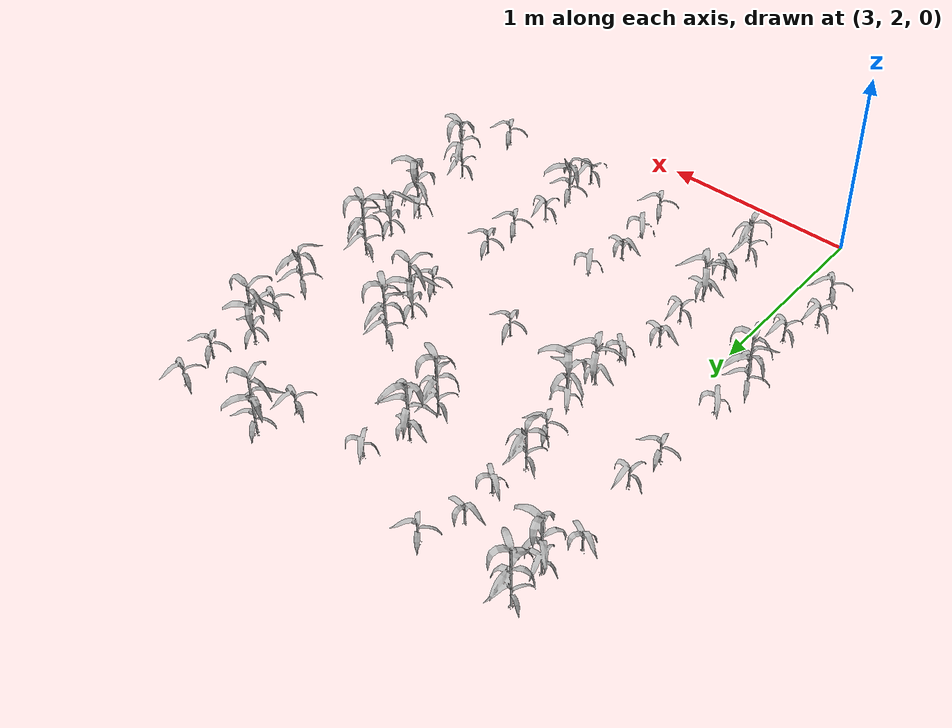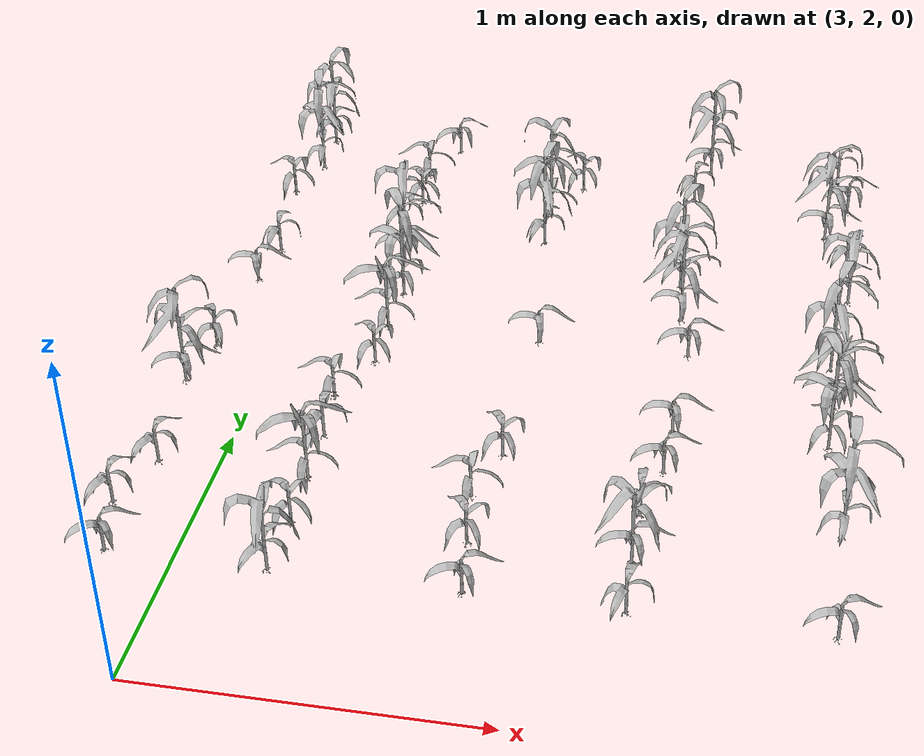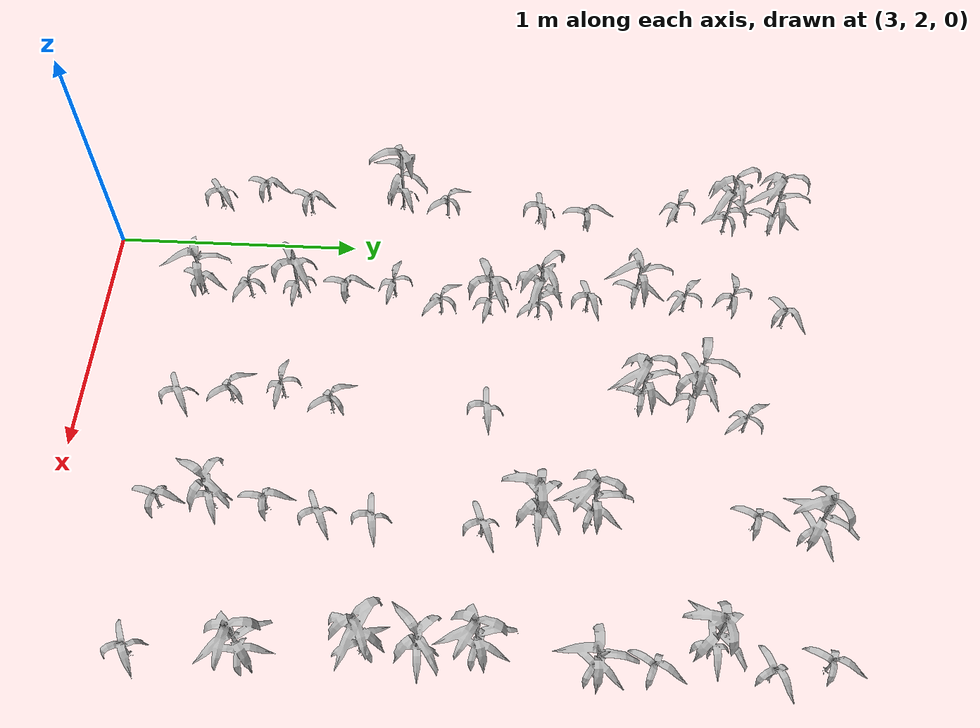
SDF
<sdf version="1.7">
 <world name="default">
  <model name="maize_2.8244248207793765_2.415">
   <static>1</static>
   <link name="link">
    <inertial>
     <mass>0.2</mass>
     <inertia>
      <ixx>0.166667</ixx>
      <ixy>0</ixy>
      <ixz>0</ixz>
      <iyy>0.166667</iyy>
      <iyz>0</iyz>
      <izz>0.166667</izz>
     </inertia>
    </inertial>
    <collision name="collision">
     <geometry><mesh><uri>model://corn_3/meshes/corn.dae</uri><scale>0.25 0.25 0.25</scale></mesh></geometry>
     <surface>
      <friction><ode><mu>0</mu><mu2>0</mu2></ode></friction>
      <contact><ode><kp>0</kp><kd>0</kd><max_vel>0</max_vel><min_depth>0.002</min_depth></ode></contact>
     </surface>
    </collision>
    <visual name="visual">
     <geometry><mesh><uri>model://corn_3/meshes/corn.dae</uri><scale>0.25 0.25 0.25</scale></mesh></geometry>
    </visual>
    <velocity_decay><linear>0</linear><angular>0</angular></velocity_decay>
   </link>
   <pose>2.82443 2.415 0.05 0 -0 0.677731</pose>
  </model>
  <model name="maize_2.774792496916839_2.6100000000000003">
   <static>1</static>
   <link name="link">
    <inertial>
     <mass>0.2</mass>
     <inertia>
      <ixx>0.166667</ixx>
      <ixy>0</ixy>
      <ixz>0</ixz>
      <iyy>0.166667</iyy>
      <iyz>0</iyz>
      <izz>0.166667</izz>
     </inertia>
    </inertial>
    <collision name="collision">
     <geometry><mesh><uri>model://corn_3/meshes/corn.dae</uri><scale>0.25 0.25 0.25</scale></mesh></geometry>
     <surface>
      <friction><ode><mu>0</mu><mu2>0</mu2></ode></friction>
      <contact><ode><kp>0</kp><kd>0</kd><max_vel>0</max_vel><min_depth>0.002</min_depth></ode></contact>
     </surface>
    </collision>
    <visual name="visual">
     <geometry><mesh><uri>model://corn_3/meshes/corn.dae</uri><scale>0.25 0.25 0.25</scale></mesh></geometry>
    </visual>
    <velocity_decay><linear>0</linear><angular>0</angular></velocity_decay>
   </link>
   <pose>2.77479 2.61 0.05 0 -0 1.27128</pose>
  </model>
  <model name="maize_2.8406246584385504_2.8050000000000006">
   <static>1</static>
   <link name="link">
    <inertial>
     <mass>0.2</mass>
     <inertia>
      <ixx>0.166667</ixx>
      <ixy>0</ixy>
      <ixz>0</ixz>
      <iyy>0.166667</iyy>
      <iyz>0</iyz>
      <izz>0.166667</izz>
     </inertia>
    </inertial>
    <collision name="collision">
     <geometry><mesh><uri>model://corn_3/meshes/corn.dae</uri><scale>0.25 0.25 0.25</scale></mesh></geometry>
     <surface>
      <friction><ode><mu>0</mu><mu2>0</mu2></ode></friction>
      <contact><ode><kp>0</kp><kd>0</kd><max_vel>0</max_vel><min_depth>0.002</min_depth></ode></contact>
     </surface>
    </collision>
    <visual name="visual">
     <geometry><mesh><uri>model://corn_3/meshes/corn.dae</uri><scale>0.25 0.25 0.25</scale></mesh></geometry>
    </visual>
    <velocity_decay><linear>0</linear><angular>0</angular></velocity_decay>
   </link>
   <pose>2.84063 2.805 0.05 0 -0 1.23743</pose>
  </model>
  <model name="maize_2.7902165927224867_3.1950000000000003">
   <static>1</static>
   <link name="link">
    <inertial>
     <mass>0.2</mass>
     <inertia>
      <ixx>0.166667</ixx>
      <ixy>0</ixy>
      <ixz>0</ixz>
      <iyy>0.166667</iyy>
      <iyz>0</iyz>
      <izz>0.166667</izz>
     </inertia>
    </inertial>
    <collision name="collision">
     <geometry><mesh><uri>model://corn_5/meshes/corn.dae</uri><scale>0.25 0.25 0.25</scale></mesh></geometry>
     <surface>
      <friction><ode><mu>0</mu><mu2>0</mu2></ode></friction>
      <contact><ode><kp>0</kp><kd>0</kd><max_vel>0</max_vel><min_depth>0.002</min_depth></ode></contact>
     </surface>
    </collision>
    <visual name="visual">
     <geometry><mesh><uri>model://corn_5/meshes/corn.dae</uri><scale>0.25 0.25 0.25</scale></mesh></geometry>
    </visual>
    <velocity_decay><linear>0</linear><angular>0</angular></velocity_decay>
   </link>
   <pose>2.79022 3.195 0.05 0 -0 0.473636</pose>
  </model>
  <model name="maize_2.8267955097829036_3.3899999999999997">
   <static>1</static>
   <link name="link">
    <inertial>
     <mass>0.2</mass>
     <inertia>
      <ixx>0.166667</ixx>
      <ixy>0</ixy>
      <ixz>0</ixz>
      <iyy>0.166667</iyy>
      <iyz>0</iyz>
      <izz>0.166667</izz>
     </inertia>
    </inertial>
    <collision name="collision">
     <geometry><mesh><uri>model://corn_3/meshes/corn.dae</uri><scale>0.25 0.25 0.25</scale></mesh></geometry>
     <surface>
      <friction><ode><mu>0</mu><mu2>0</mu2></ode></friction>
      <contact><ode><kp>0</kp><kd>0</kd><max_vel>0</max_vel><min_depth>0.002</min_depth></ode></contact>
     </surface>
    </collision>
    <visual name="visual">
     <geometry><mesh><uri>model://corn_3/meshes/corn.dae</uri><scale>0.25 0.25 0.25</scale></mesh></geometry>
    </visual>
    <velocity_decay><linear>0</linear><angular>0</angular></velocity_decay>
   </link>
   <pose>2.8268 3.39 0.05 0 -0 2.19696</pose>
  </model>
  <model name="maize_2.844087900887767_3.7800000000000002">
   <static>1</static>
   <link name="link">
    <inertial>
     <mass>0.2</mass>
     <inertia>
      <ixx>0.166667</ixx>
      <ixy>0</ixy>
      <ixz>0</ixz>
      <iyy>0.166667</iyy>
      <iyz>0</iyz>
      <izz>0.166667</izz>
     </inertia>
    </inertial>
    <collision name="collision">
     <geometry><mesh><uri>model://corn_3/meshes/corn.dae</uri><scale>0.25 0.25 0.25</scale></mesh></geometry>
     <surface>
      <friction><ode><mu>0</mu><mu2>0</mu2></ode></friction>
      <contact><ode><kp>0</kp><kd>0</kd><max_vel>0</max_vel><min_depth>0.002</min_depth></ode></contact>
     </surface>
    </collision>
    <visual name="visual">
     <geometry><mesh><uri>model://corn_3/meshes/corn.dae</uri><scale>0.25 0.25 0.25</scale></mesh></geometry>
    </visual>
    <velocity_decay><linear>0</linear><angular>0</angular></velocity_decay>
   </link>
   <pose>2.84409 3.78 0.05 0 -0 0.218754</pose>
  </model>
  <model name="maize_2.865433956093503_3.9750000000000005">
   <static>1</static>
   <link name="link">
    <inertial>
     <mass>0.2</mass>
     <inertia>
      <ixx>0.166667</ixx>
      <ixy>0</ixy>
      <ixz>0</ixz>
      <iyy>0.166667</iyy>
      <iyz>0</iyz>
      <izz>0.166667</izz>
     </inertia>
    </inertial>
    <collision name="collision">
     <geometry><mesh><uri>model://corn_3/meshes/corn.dae</uri><scale>0.25 0.25 0.25</scale></mesh></geometry>
     <surface>
      <friction><ode><mu>0</mu><mu2>0</mu2></ode></friction>
      <contact><ode><kp>0</kp><kd>0</kd><max_vel>0</max_vel><min_depth>0.002</min_depth></ode></contact>
     </surface>
    </collision>
    <visual name="visual">
     <geometry><mesh><uri>model://corn_3/meshes/corn.dae</uri><scale>0.25 0.25 0.25</scale></mesh></geometry>
    </visual>
    <velocity_decay><linear>0</linear><angular>0</angular></velocity_decay>
   </link>
   <pose>2.86543 3.975 0.05 0 -0 1.53986</pose>
  </model>
  <model name="maize_2.8072586818521645_4.365000000000001">
   <static>1</static>
   <link name="link">
    <inertial>
     <mass>0.2</mass>
     <inertia>
      <ixx>0.166667</ixx>
      <ixy>0</ixy>
      <ixz>0</ixz>
      <iyy>0.166667</iyy>
      <iyz>0</iyz>
      <izz>0.166667</izz>
     </inertia>
    </inertial>
    <collision name="collision">
     <geometry><mesh><uri>model://corn_3/meshes/corn.dae</uri><scale>0.25 0.25 0.25</scale></mesh></geometry>
     <surface>
      <friction><ode><mu>0</mu><mu2>0</mu2></ode></friction>
      <contact><ode><kp>0</kp><kd>0</kd><max_vel>0</max_vel><min_depth>0.002</min_depth></ode></contact>
     </surface>
    </collision>
    <visual name="visual">
     <geometry><mesh><uri>model://corn_3/meshes/corn.dae</uri><scale>0.25 0.25 0.25</scale></mesh></geometry>
    </visual>
    <velocity_decay><linear>0</linear><angular>0</angular></velocity_decay>
   </link>
   <pose>2.80726 4.365 0.05 0 -0 2.74895</pose>
  </model>
  <model name="maize_2.8615636835686873_4.56">
   <static>1</static>
   <link name="link">
    <inertial>
     <mass>0.2</mass>
     <inertia>
      <ixx>0.166667</ixx>
      <ixy>0</ixy>
      <ixz>0</ixz>
      <iyy>0.166667</iyy>
      <iyz>0</iyz>
      <izz>0.166667</izz>
     </inertia>
    </inertial>
    <collision name="collision">
     <geometry><mesh><uri>model://corn_5/meshes/corn.dae</uri><scale>0.25 0.25 0.25</scale></mesh></geometry>
     <surface>
      <friction><ode><mu>0</mu><mu2>0</mu2></ode></friction>
      <contact><ode><kp>0</kp><kd>0</kd><max_vel>0</max_vel><min_depth>0.002</min_depth></ode></contact>
     </surface>
    </collision>
    <visual name="visual">
     <geometry><mesh><uri>model://corn_5/meshes/corn.dae</uri><scale>0.25 0.25 0.25</scale></mesh></geometry>
    </visual>
    <velocity_decay><linear>0</linear><angular>0</angular></velocity_decay>
   </link>
   <pose>2.86156 4.56 0.05 0 -0 1.84243</pose>
  </model>
  <model name="maize_2.8543140193995895_4.755">
   <static>1</static>
   <link name="link">
    <inertial>
     <mass>0.2</mass>
     <inertia>
      <ixx>0.166667</ixx>
      <ixy>0</ixy>
      <ixz>0</ixz>
      <iyy>0.166667</iyy>
      <iyz>0</iyz>
      <izz>0.166667</izz>
     </inertia>
    </inertial>
    <collision name="collision">
     <geometry><mesh><uri>model://corn_5/meshes/corn.dae</uri><scale>0.25 0.25 0.25</scale></mesh></geometry>
     <surface>
      <friction><ode><mu>0</mu><mu2>0</mu2></ode></friction>
      <contact><ode><kp>0</kp><kd>0</kd><max_vel>0</max_vel><min_depth>0.002</min_depth></ode></contact>
     </surface>
    </collision>
    <visual name="visual">
     <geometry><mesh><uri>model://corn_5/meshes/corn.dae</uri><scale>0.25 0.25 0.25</scale></mesh></geometry>
    </visual>
    <velocity_decay><linear>0</linear><angular>0</angular></velocity_decay>
   </link>
   <pose>2.85431 4.755 0.05 0 -0 1.14133</pose>
  </model>
  <model name="maize_3.2862866395649486_2.415">
   <static>1</static>
   <link name="link">
    <inertial>
     <mass>0.2</mass>
     <inertia>
      <ixx>0.166667</ixx>
      <ixy>0</ixy>
      <ixz>0</ixz>
      <iyy>0.166667</iyy>
      <iyz>0</iyz>
      <izz>0.166667</izz>
     </inertia>
    </inertial>
    <collision name="collision">
     <geometry><mesh><uri>model://corn_4/meshes/corn.dae</uri><scale>0.25 0.25 0.25</scale></mesh></geometry>
     <surface>
      <friction><ode><mu>0</mu><mu2>0</mu2></ode></friction>
      <contact><ode><kp>0</kp><kd>0</kd><max_vel>0</max_vel><min_depth>0.002</min_depth></ode></contact>
     </surface>
    </collision>
    <visual name="visual">
     <geometry><mesh><uri>model://corn_4/meshes/corn.dae</uri><scale>0.25 0.25 0.25</scale></mesh></geometry>
    </visual>
    <velocity_decay><linear>0</linear><angular>0</angular></velocity_decay>
   </link>
   <pose>3.28629 2.415 0.05 0 -0 1.17777</pose>
  </model>
  <model name="maize_3.2971529848726315_2.6100000000000003">
   <static>1</static>
   <link name="link">
    <inertial>
     <mass>0.2</mass>
     <inertia>
      <ixx>0.166667</ixx>
      <ixy>0</ixy>
      <ixz>0</ixz>
      <iyy>0.166667</iyy>
      <iyz>0</iyz>
      <izz>0.166667</izz>
     </inertia>
    </inertial>
    <collision name="collision">
     <geometry><mesh><uri>model://corn_3/meshes/corn.dae</uri><scale>0.25 0.25 0.25</scale></mesh></geometry>
     <surface>
      <friction><ode><mu>0</mu><mu2>0</mu2></ode></friction>
      <contact><ode><kp>0</kp><kd>0</kd><max_vel>0</max_vel><min_depth>0.002</min_depth></ode></contact>
     </surface>
    </collision>
    <visual name="visual">
     <geometry><mesh><uri>model://corn_3/meshes/corn.dae</uri><scale>0.25 0.25 0.25</scale></mesh></geometry>
    </visual>
    <velocity_decay><linear>0</linear><angular>0</angular></velocity_decay>
   </link>
   <pose>3.29715 2.61 0.05 0 -0 2.62043</pose>
  </model>
  <model name="maize_3.2903254343312773_2.8050000000000006">
   <static>1</static>
   <link name="link">
    <inertial>
     <mass>0.2</mass>
     <inertia>
      <ixx>0.166667</ixx>
      <ixy>0</ixy>
      <ixz>0</ixz>
      <iyy>0.166667</iyy>
      <iyz>0</iyz>
      <izz>0.166667</izz>
     </inertia>
    </inertial>
    <collision name="collision">
     <geometry><mesh><uri>model://corn_4/meshes/corn.dae</uri><scale>0.25 0.25 0.25</scale></mesh></geometry>
     <surface>
      <friction><ode><mu>0</mu><mu2>0</mu2></ode></friction>
      <contact><ode><kp>0</kp><kd>0</kd><max_vel>0</max_vel><min_depth>0.002</min_depth></ode></contact>
     </surface>
    </collision>
    <visual name="visual">
     <geometry><mesh><uri>model://corn_4/meshes/corn.dae</uri><scale>0.25 0.25 0.25</scale></mesh></geometry>
    </visual>
    <velocity_decay><linear>0</linear><angular>0</angular></velocity_decay>
   </link>
   <pose>3.29033 2.805 0.05 0 -0 3.12015</pose>
  </model>
  <model name="maize_3.2853052241494503_3.000000000000001">
   <static>1</static>
   <link name="link">
    <inertial>
     <mass>0.2</mass>
     <inertia>
      <ixx>0.166667</ixx>
      <ixy>0</ixy>
      <ixz>0</ixz>
      <iyy>0.166667</iyy>
      <iyz>0</iyz>
      <izz>0.166667</izz>
     </inertia>
    </inertial>
    <collision name="collision">
     <geometry><mesh><uri>model://corn_3/meshes/corn.dae</uri><scale>0.25 0.25 0.25</scale></mesh></geometry>
     <surface>
      <friction><ode><mu>0</mu><mu2>0</mu2></ode></friction>
      <contact><ode><kp>0</kp><kd>0</kd><max_vel>0</max_vel><min_depth>0.002</min_depth></ode></contact>
     </surface>
    </collision>
    <visual name="visual">
     <geometry><mesh><uri>model://corn_3/meshes/corn.dae</uri><scale>0.25 0.25 0.25</scale></mesh></geometry>
    </visual>
    <velocity_decay><linear>0</linear><angular>0</angular></velocity_decay>
   </link>
   <pose>3.28531 3 0.05 0 -0 1.49109</pose>
  </model>
  <model name="maize_3.26472700474363_3.1950000000000003">
   <static>1</static>
   <link name="link">
    <inertial>
     <mass>0.2</mass>
     <inertia>
      <ixx>0.166667</ixx>
      <ixy>0</ixy>
      <ixz>0</ixz>
      <iyy>0.166667</iyy>
      <iyz>0</iyz>
      <izz>0.166667</izz>
     </inertia>
    </inertial>
    <collision name="collision">
     <geometry><mesh><uri>model://corn_3/meshes/corn.dae</uri><scale>0.25 0.25 0.25</scale></mesh></geometry>
     <surface>
      <friction><ode><mu>0</mu><mu2>0</mu2></ode></friction>
      <contact><ode><kp>0</kp><kd>0</kd><max_vel>0</max_vel><min_depth>0.002</min_depth></ode></contact>
     </surface>
    </collision>
    <visual name="visual">
     <geometry><mesh><uri>model://corn_3/meshes/corn.dae</uri><scale>0.25 0.25 0.25</scale></mesh></geometry>
    </visual>
    <velocity_decay><linear>0</linear><angular>0</angular></velocity_decay>
   </link>
   <pose>3.26473 3.195 0.05 0 -0 3.01105</pose>
  </model>
  <model name="maize_3.345355012522447_3.3899999999999997">
   <static>1</static>
   <link name="link">
    <inertial>
     <mass>0.2</mass>
     <inertia>
      <ixx>0.166667</ixx>
      <ixy>0</ixy>
      <ixz>0</ixz>
      <iyy>0.166667</iyy>
      <iyz>0</iyz>
      <izz>0.166667</izz>
     </inertia>
    </inertial>
    <collision name="collision">
     <geometry><mesh><uri>model://corn_3/meshes/corn.dae</uri><scale>0.25 0.25 0.25</scale></mesh></geometry>
     <surface>
      <friction><ode><mu>0</mu><mu2>0</mu2></ode></friction>
      <contact><ode><kp>0</kp><kd>0</kd><max_vel>0</max_vel><min_depth>0.002</min_depth></ode></contact>
     </surface>
    </collision>
    <visual name="visual">
     <geometry><mesh><uri>model://corn_3/meshes/corn.dae</uri><scale>0.25 0.25 0.25</scale></mesh></geometry>
    </visual>
    <velocity_decay><linear>0</linear><angular>0</angular></velocity_decay>
   </link>
   <pose>3.34536 3.39 0.05 0 -0 2.42483</pose>
  </model>
  <model name="maize_3.339645030773531_3.585">
   <static>1</static>
   <link name="link">
    <inertial>
     <mass>0.2</mass>
     <inertia>
      <ixx>0.166667</ixx>
      <ixy>0</ixy>
      <ixz>0</ixz>
      <iyy>0.166667</iyy>
      <iyz>0</iyz>
      <izz>0.166667</izz>
     </inertia>
    </inertial>
    <collision name="collision">
     <geometry><mesh><uri>model://corn_4/meshes/corn.dae</uri><scale>0.25 0.25 0.25</scale></mesh></geometry>
     <surface>
      <friction><ode><mu>0</mu><mu2>0</mu2></ode></friction>
      <contact><ode><kp>0</kp><kd>0</kd><max_vel>0</max_vel><min_depth>0.002</min_depth></ode></contact>
     </surface>
    </collision>
    <visual name="visual">
     <geometry><mesh><uri>model://corn_4/meshes/corn.dae</uri><scale>0.25 0.25 0.25</scale></mesh></geometry>
    </visual>
    <velocity_decay><linear>0</linear><angular>0</angular></velocity_decay>
   </link>
   <pose>3.33964 3.585 0.05 0 -0 2.98528</pose>
  </model>
  <model name="maize_3.346978174273397_3.7800000000000002">
   <static>1</static>
   <link name="link">
    <inertial>
     <mass>0.2</mass>
     <inertia>
      <ixx>0.166667</ixx>
      <ixy>0</ixy>
      <ixz>0</ixz>
      <iyy>0.166667</iyy>
      <iyz>0</iyz>
      <izz>0.166667</izz>
     </inertia>
    </inertial>
    <collision name="collision">
     <geometry><mesh><uri>model://corn_5/meshes/corn.dae</uri><scale>0.25 0.25 0.25</scale></mesh></geometry>
     <surface>
      <friction><ode><mu>0</mu><mu2>0</mu2></ode></friction>
      <contact><ode><kp>0</kp><kd>0</kd><max_vel>0</max_vel><min_depth>0.002</min_depth></ode></contact>
     </surface>
    </collision>
    <visual name="visual">
     <geometry><mesh><uri>model://corn_5/meshes/corn.dae</uri><scale>0.25 0.25 0.25</scale></mesh></geometry>
    </visual>
    <velocity_decay><linear>0</linear><angular>0</angular></velocity_decay>
   </link>
   <pose>3.34698 3.78 0.05 0 -0 2.22183</pose>
  </model>
  <model name="maize_3.304312208960409_3.9750000000000005">
   <static>1</static>
   <link name="link">
    <inertial>
     <mass>0.2</mass>
     <inertia>
      <ixx>0.166667</ixx>
      <ixy>0</ixy>
      <ixz>0</ixz>
      <iyy>0.166667</iyy>
      <iyz>0</iyz>
      <izz>0.166667</izz>
     </inertia>
    </inertial>
    <collision name="collision">
     <geometry><mesh><uri>model://corn_3/meshes/corn.dae</uri><scale>0.25 0.25 0.25</scale></mesh></geometry>
     <surface>
      <friction><ode><mu>0</mu><mu2>0</mu2></ode></friction>
      <contact><ode><kp>0</kp><kd>0</kd><max_vel>0</max_vel><min_depth>0.002</min_depth></ode></contact>
     </surface>
    </collision>
    <visual name="visual">
     <geometry><mesh><uri>model://corn_3/meshes/corn.dae</uri><scale>0.25 0.25 0.25</scale></mesh></geometry>
    </visual>
    <velocity_decay><linear>0</linear><angular>0</angular></velocity_decay>
   </link>
   <pose>3.30431 3.975 0.05 0 -0 0.385969</pose>
  </model>
  <model name="maize_3.2592470380215692_4.170000000000001">
   <static>1</static>
   <link name="link">
    <inertial>
     <mass>0.2</mass>
     <inertia>
      <ixx>0.166667</ixx>
      <ixy>0</ixy>
      <ixz>0</ixz>
      <iyy>0.166667</iyy>
      <iyz>0</iyz>
      <izz>0.166667</izz>
     </inertia>
    </inertial>
    <collision name="collision">
     <geometry><mesh><uri>model://corn_4/meshes/corn.dae</uri><scale>0.25 0.25 0.25</scale></mesh></geometry>
     <surface>
      <friction><ode><mu>0</mu><mu2>0</mu2></ode></friction>
      <contact><ode><kp>0</kp><kd>0</kd><max_vel>0</max_vel><min_depth>0.002</min_depth></ode></contact>
     </surface>
    </collision>
    <visual name="visual">
     <geometry><mesh><uri>model://corn_4/meshes/corn.dae</uri><scale>0.25 0.25 0.25</scale></mesh></geometry>
    </visual>
    <velocity_decay><linear>0</linear><angular>0</angular></velocity_decay>
   </link>
   <pose>3.25925 4.17 0.05 0 -0 1.2228</pose>
  </model>
  <model name="maize_3.2806938064286713_4.365000000000001">
   <static>1</static>
   <link name="link">
    <inertial>
     <mass>0.2</mass>
     <inertia>
      <ixx>0.166667</ixx>
      <ixy>0</ixy>
      <ixz>0</ixz>
      <iyy>0.166667</iyy>
      <iyz>0</iyz>
      <izz>0.166667</izz>
     </inertia>
    </inertial>
    <collision name="collision">
     <geometry><mesh><uri>model://corn_3/meshes/corn.dae</uri><scale>0.25 0.25 0.25</scale></mesh></geometry>
     <surface>
      <friction><ode><mu>0</mu><mu2>0</mu2></ode></friction>
      <contact><ode><kp>0</kp><kd>0</kd><max_vel>0</max_vel><min_depth>0.002</min_depth></ode></contact>
     </surface>
    </collision>
    <visual name="visual">
     <geometry><mesh><uri>model://corn_3/meshes/corn.dae</uri><scale>0.25 0.25 0.25</scale></mesh></geometry>
    </visual>
    <velocity_decay><linear>0</linear><angular>0</angular></velocity_decay>
   </link>
   <pose>3.28069 4.365 0.05 0 -0 2.55697</pose>
  </model>
  <model name="maize_3.263959321857466_4.56">
   <static>1</static>
   <link name="link">
    <inertial>
     <mass>0.2</mass>
     <inertia>
      <ixx>0.166667</ixx>
      <ixy>0</ixy>
      <ixz>0</ixz>
      <iyy>0.166667</iyy>
      <iyz>0</iyz>
      <izz>0.166667</izz>
     </inertia>
    </inertial>
    <collision name="collision">
     <geometry><mesh><uri>model://corn_3/meshes/corn.dae</uri><scale>0.25 0.25 0.25</scale></mesh></geometry>
     <surface>
      <friction><ode><mu>0</mu><mu2>0</mu2></ode></friction>
      <contact><ode><kp>0</kp><kd>0</kd><max_vel>0</max_vel><min_depth>0.002</min_depth></ode></contact>
     </surface>
    </collision>
    <visual name="visual">
     <geometry><mesh><uri>model://corn_3/meshes/corn.dae</uri><scale>0.25 0.25 0.25</scale></mesh></geometry>
    </visual>
    <velocity_decay><linear>0</linear><angular>0</angular></velocity_decay>
   </link>
   <pose>3.26396 4.56 0.05 0 -0 3.13289</pose>
  </model>
  <model name="maize_3.3411550386050015_4.755">
   <static>1</static>
   <link name="link">
    <inertial>
     <mass>0.2</mass>
     <inertia>
      <ixx>0.166667</ixx>
      <ixy>0</ixy>
      <ixz>0</ixz>
      <iyy>0.166667</iyy>
      <iyz>0</iyz>
      <izz>0.166667</izz>
     </inertia>
    </inertial>
    <collision name="collision">
     <geometry><mesh><uri>model://corn_3/meshes/corn.dae</uri><scale>0.25 0.25 0.25</scale></mesh></geometry>
     <surface>
      <friction><ode><mu>0</mu><mu2>0</mu2></ode></friction>
      <contact><ode><kp>0</kp><kd>0</kd><max_vel>0</max_vel><min_depth>0.002</min_depth></ode></contact>
     </surface>
    </collision>
    <visual name="visual">
     <geometry><mesh><uri>model://corn_3/meshes/corn.dae</uri><scale>0.25 0.25 0.25</scale></mesh></geometry>
    </visual>
    <velocity_decay><linear>0</linear><angular>0</angular></velocity_decay>
   </link>
   <pose>3.34116 4.755 0.05 0 -0 0.662899</pose>
  </model>
  <model name="maize_3.8223544037475885_2.415">
   <static>1</static>
   <link name="link">
    <inertial>
     <mass>0.2</mass>
     <inertia>
      <ixx>0.166667</ixx>
      <ixy>0</ixy>
      <ixz>0</ixz>
      <iyy>0.166667</iyy>
      <iyz>0</iyz>
      <izz>0.166667</izz>
     </inertia>
    </inertial>
    <collision name="collision">
     <geometry><mesh><uri>model://corn_3/meshes/corn.dae</uri><scale>0.25 0.25 0.25</scale></mesh></geometry>
     <surface>
      <friction><ode><mu>0</mu><mu2>0</mu2></ode></friction>
      <contact><ode><kp>0</kp><kd>0</kd><max_vel>0</max_vel><min_depth>0.002</min_depth></ode></contact>
     </surface>
    </collision>
    <visual name="visual">
     <geometry><mesh><uri>model://corn_3/meshes/corn.dae</uri><scale>0.25 0.25 0.25</scale></mesh></geometry>
    </visual>
    <velocity_decay><linear>0</linear><angular>0</angular></velocity_decay>
   </link>
   <pose>3.82235 2.415 0.05 0 -0 0.501719</pose>
  </model>
  <model name="maize_3.796549780503951_2.6100000000000003">
   <static>1</static>
   <link name="link">
    <inertial>
     <mass>0.2</mass>
     <inertia>
      <ixx>0.166667</ixx>
      <ixy>0</ixy>
      <ixz>0</ixz>
      <iyy>0.166667</iyy>
      <iyz>0</iyz>
      <izz>0.166667</izz>
     </inertia>
    </inertial>
    <collision name="collision">
     <geometry><mesh><uri>model://corn_3/meshes/corn.dae</uri><scale>0.25 0.25 0.25</scale></mesh></geometry>
     <surface>
      <friction><ode><mu>0</mu><mu2>0</mu2></ode></friction>
      <contact><ode><kp>0</kp><kd>0</kd><max_vel>0</max_vel><min_depth>0.002</min_depth></ode></contact>
     </surface>
    </collision>
    <visual name="visual">
     <geometry><mesh><uri>model://corn_3/meshes/corn.dae</uri><scale>0.25 0.25 0.25</scale></mesh></geometry>
    </visual>
    <velocity_decay><linear>0</linear><angular>0</angular></velocity_decay>
   </link>
   <pose>3.79655 2.61 0.05 0 -0 2.24491</pose>
  </model>
  <model name="maize_3.7691438764127647_2.8050000000000006">
   <static>1</static>
   <link name="link">
    <inertial>
     <mass>0.2</mass>
     <inertia>
      <ixx>0.166667</ixx>
      <ixy>0</ixy>
      <ixz>0</ixz>
      <iyy>0.166667</iyy>
      <iyz>0</iyz>
      <izz>0.166667</izz>
     </inertia>
    </inertial>
    <collision name="collision">
     <geometry><mesh><uri>model://corn_3/meshes/corn.dae</uri><scale>0.25 0.25 0.25</scale></mesh></geometry>
     <surface>
      <friction><ode><mu>0</mu><mu2>0</mu2></ode></friction>
      <contact><ode><kp>0</kp><kd>0</kd><max_vel>0</max_vel><min_depth>0.002</min_depth></ode></contact>
     </surface>
    </collision>
    <visual name="visual">
     <geometry><mesh><uri>model://corn_3/meshes/corn.dae</uri><scale>0.25 0.25 0.25</scale></mesh></geometry>
    </visual>
    <velocity_decay><linear>0</linear><angular>0</angular></velocity_decay>
   </link>
   <pose>3.76914 2.805 0.05 0 -0 3.07938</pose>
  </model>
  <model name="maize_3.8253490522609988_3.000000000000001">
   <static>1</static>
   <link name="link">
    <inertial>
     <mass>0.2</mass>
     <inertia>
      <ixx>0.166667</ixx>
      <ixy>0</ixy>
      <ixz>0</ixz>
      <iyy>0.166667</iyy>
      <iyz>0</iyz>
      <izz>0.166667</izz>
     </inertia>
    </inertial>
    <collision name="collision">
     <geometry><mesh><uri>model://corn_3/meshes/corn.dae</uri><scale>0.25 0.25 0.25</scale></mesh></geometry>
     <surface>
      <friction><ode><mu>0</mu><mu2>0</mu2></ode></friction>
      <contact><ode><kp>0</kp><kd>0</kd><max_vel>0</max_vel><min_depth>0.002</min_depth></ode></contact>
     </surface>
    </collision>
    <visual name="visual">
     <geometry><mesh><uri>model://corn_3/meshes/corn.dae</uri><scale>0.25 0.25 0.25</scale></mesh></geometry>
    </visual>
    <velocity_decay><linear>0</linear><angular>0</angular></velocity_decay>
   </link>
   <pose>3.82535 3 0.05 0 -0 2.20038</pose>
  </model>
  <model name="maize_3.8344046426446026_3.585">
   <static>1</static>
   <link name="link">
    <inertial>
     <mass>0.2</mass>
     <inertia>
      <ixx>0.166667</ixx>
      <ixy>0</ixy>
      <ixz>0</ixz>
      <iyy>0.166667</iyy>
      <iyz>0</iyz>
      <izz>0.166667</izz>
     </inertia>
    </inertial>
    <collision name="collision">
     <geometry><mesh><uri>model://corn_3/meshes/corn.dae</uri><scale>0.25 0.25 0.25</scale></mesh></geometry>
     <surface>
      <friction><ode><mu>0</mu><mu2>0</mu2></ode></friction>
      <contact><ode><kp>0</kp><kd>0</kd><max_vel>0</max_vel><min_depth>0.002</min_depth></ode></contact>
     </surface>
    </collision>
    <visual name="visual">
     <geometry><mesh><uri>model://corn_3/meshes/corn.dae</uri><scale>0.25 0.25 0.25</scale></mesh></geometry>
    </visual>
    <velocity_decay><linear>0</linear><angular>0</angular></velocity_decay>
   </link>
   <pose>3.8344 3.585 0.05 0 -0 0.140074</pose>
  </model>
  <model name="maize_3.7570927877433244_4.170000000000001">
   <static>1</static>
   <link name="link">
    <inertial>
     <mass>0.2</mass>
     <inertia>
      <ixx>0.166667</ixx>
      <ixy>0</ixy>
      <ixz>0</ixz>
      <iyy>0.166667</iyy>
      <iyz>0</iyz>
      <izz>0.166667</izz>
     </inertia>
    </inertial>
    <collision name="collision">
     <geometry><mesh><uri>model://corn_5/meshes/corn.dae</uri><scale>0.25 0.25 0.25</scale></mesh></geometry>
     <surface>
      <friction><ode><mu>0</mu><mu2>0</mu2></ode></friction>
      <contact><ode><kp>0</kp><kd>0</kd><max_vel>0</max_vel><min_depth>0.002</min_depth></ode></contact>
     </surface>
    </collision>
    <visual name="visual">
     <geometry><mesh><uri>model://corn_5/meshes/corn.dae</uri><scale>0.25 0.25 0.25</scale></mesh></geometry>
    </visual>
    <velocity_decay><linear>0</linear><angular>0</angular></velocity_decay>
   </link>
   <pose>3.75709 4.17 0.05 0 -0 1.30662</pose>
  </model>
  <model name="maize_3.749240129354522_4.365000000000001">
   <static>1</static>
   <link name="link">
    <inertial>
     <mass>0.2</mass>
     <inertia>
      <ixx>0.166667</ixx>
      <ixy>0</ixy>
      <ixz>0</ixz>
      <iyy>0.166667</iyy>
      <iyz>0</iyz>
      <izz>0.166667</izz>
     </inertia>
    </inertial>
    <collision name="collision">
     <geometry><mesh><uri>model://corn_5/meshes/corn.dae</uri><scale>0.25 0.25 0.25</scale></mesh></geometry>
     <surface>
      <friction><ode><mu>0</mu><mu2>0</mu2></ode></friction>
      <contact><ode><kp>0</kp><kd>0</kd><max_vel>0</max_vel><min_depth>0.002</min_depth></ode></contact>
     </surface>
    </collision>
    <visual name="visual">
     <geometry><mesh><uri>model://corn_5/meshes/corn.dae</uri><scale>0.25 0.25 0.25</scale></mesh></geometry>
    </visual>
    <velocity_decay><linear>0</linear><angular>0</angular></velocity_decay>
   </link>
   <pose>3.74924 4.365 0.05 0 -0 3.02705</pose>
  </model>
  <model name="maize_3.8382152239203906_4.56">
   <static>1</static>
   <link name="link">
    <inertial>
     <mass>0.2</mass>
     <inertia>
      <ixx>0.166667</ixx>
      <ixy>0</ixy>
      <ixz>0</ixz>
      <iyy>0.166667</iyy>
      <iyz>0</iyz>
      <izz>0.166667</izz>
     </inertia>
    </inertial>
    <collision name="collision">
     <geometry><mesh><uri>model://corn_3/meshes/corn.dae</uri><scale>0.25 0.25 0.25</scale></mesh></geometry>
     <surface>
      <friction><ode><mu>0</mu><mu2>0</mu2></ode></friction>
      <contact><ode><kp>0</kp><kd>0</kd><max_vel>0</max_vel><min_depth>0.002</min_depth></ode></contact>
     </surface>
    </collision>
    <visual name="visual">
     <geometry><mesh><uri>model://corn_3/meshes/corn.dae</uri><scale>0.25 0.25 0.25</scale></mesh></geometry>
    </visual>
    <velocity_decay><linear>0</linear><angular>0</angular></velocity_decay>
   </link>
   <pose>3.83821 4.56 0.05 0 -0 2.28396</pose>
  </model>
  <model name="maize_4.260883157664362_2.415">
   <static>1</static>
   <link name="link">
    <inertial>
     <mass>0.2</mass>
     <inertia>
      <ixx>0.166667</ixx>
      <ixy>0</ixy>
      <ixz>0</ixz>
      <iyy>0.166667</iyy>
      <iyz>0</iyz>
      <izz>0.166667</izz>
     </inertia>
    </inertial>
    <collision name="collision">
     <geometry><mesh><uri>model://corn_3/meshes/corn.dae</uri><scale>0.25 0.25 0.25</scale></mesh></geometry>
     <surface>
      <friction><ode><mu>0</mu><mu2>0</mu2></ode></friction>
      <contact><ode><kp>0</kp><kd>0</kd><max_vel>0</max_vel><min_depth>0.002</min_depth></ode></contact>
     </surface>
    </collision>
    <visual name="visual">
     <geometry><mesh><uri>model://corn_3/meshes/corn.dae</uri><scale>0.25 0.25 0.25</scale></mesh></geometry>
    </visual>
    <velocity_decay><linear>0</linear><angular>0</angular></velocity_decay>
   </link>
   <pose>4.26088 2.415 0.05 0 -0 1.38448</pose>
  </model>
  <model name="maize_4.251716179460272_2.6100000000000003">
   <static>1</static>
   <link name="link">
    <inertial>
     <mass>0.2</mass>
     <inertia>
      <ixx>0.166667</ixx>
      <ixy>0</ixy>
      <ixz>0</ixz>
      <iyy>0.166667</iyy>
      <iyz>0</iyz>
      <izz>0.166667</izz>
     </inertia>
    </inertial>
    <collision name="collision">
     <geometry><mesh><uri>model://corn_4/meshes/corn.dae</uri><scale>0.25 0.25 0.25</scale></mesh></geometry>
     <surface>
      <friction><ode><mu>0</mu><mu2>0</mu2></ode></friction>
      <contact><ode><kp>0</kp><kd>0</kd><max_vel>0</max_vel><min_depth>0.002</min_depth></ode></contact>
     </surface>
    </collision>
    <visual name="visual">
     <geometry><mesh><uri>model://corn_4/meshes/corn.dae</uri><scale>0.25 0.25 0.25</scale></mesh></geometry>
    </visual>
    <velocity_decay><linear>0</linear><angular>0</angular></velocity_decay>
   </link>
   <pose>4.25172 2.61 0.05 0 -0 0.347298</pose>
  </model>
  <model name="maize_4.25214057183028_2.8050000000000006">
   <static>1</static>
   <link name="link">
    <inertial>
     <mass>0.2</mass>
     <inertia>
      <ixx>0.166667</ixx>
      <ixy>0</ixy>
      <ixz>0</ixz>
      <iyy>0.166667</iyy>
      <iyz>0</iyz>
      <izz>0.166667</izz>
     </inertia>
    </inertial>
    <collision name="collision">
     <geometry><mesh><uri>model://corn_3/meshes/corn.dae</uri><scale>0.25 0.25 0.25</scale></mesh></geometry>
     <surface>
      <friction><ode><mu>0</mu><mu2>0</mu2></ode></friction>
      <contact><ode><kp>0</kp><kd>0</kd><max_vel>0</max_vel><min_depth>0.002</min_depth></ode></contact>
     </surface>
    </collision>
    <visual name="visual">
     <geometry><mesh><uri>model://corn_3/meshes/corn.dae</uri><scale>0.25 0.25 0.25</scale></mesh></geometry>
    </visual>
    <velocity_decay><linear>0</linear><angular>0</angular></velocity_decay>
   </link>
   <pose>4.25214 2.805 0.05 0 -0 1.59269</pose>
  </model>
  <model name="maize_4.295943101602375_3.000000000000001">
   <static>1</static>
   <link name="link">
    <inertial>
     <mass>0.2</mass>
     <inertia>
      <ixx>0.166667</ixx>
      <ixy>0</ixy>
      <ixz>0</ixz>
      <iyy>0.166667</iyy>
      <iyz>0</iyz>
      <izz>0.166667</izz>
     </inertia>
    </inertial>
    <collision name="collision">
     <geometry><mesh><uri>model://corn_3/meshes/corn.dae</uri><scale>0.25 0.25 0.25</scale></mesh></geometry>
     <surface>
      <friction><ode><mu>0</mu><mu2>0</mu2></ode></friction>
      <contact><ode><kp>0</kp><kd>0</kd><max_vel>0</max_vel><min_depth>0.002</min_depth></ode></contact>
     </surface>
    </collision>
    <visual name="visual">
     <geometry><mesh><uri>model://corn_3/meshes/corn.dae</uri><scale>0.25 0.25 0.25</scale></mesh></geometry>
    </visual>
    <velocity_decay><linear>0</linear><angular>0</angular></velocity_decay>
   </link>
   <pose>4.29594 3 0.05 0 -0 0.487002</pose>
  </model>
  <model name="maize_4.302658355236709_3.1950000000000003">
   <static>1</static>
   <link name="link">
    <inertial>
     <mass>0.2</mass>
     <inertia>
      <ixx>0.166667</ixx>
      <ixy>0</ixy>
      <ixz>0</ixz>
      <iyy>0.166667</iyy>
      <iyz>0</iyz>
      <izz>0.166667</izz>
     </inertia>
    </inertial>
    <collision name="collision">
     <geometry><mesh><uri>model://corn_3/meshes/corn.dae</uri><scale>0.25 0.25 0.25</scale></mesh></geometry>
     <surface>
      <friction><ode><mu>0</mu><mu2>0</mu2></ode></friction>
      <contact><ode><kp>0</kp><kd>0</kd><max_vel>0</max_vel><min_depth>0.002</min_depth></ode></contact>
     </surface>
    </collision>
    <visual name="visual">
     <geometry><mesh><uri>model://corn_3/meshes/corn.dae</uri><scale>0.25 0.25 0.25</scale></mesh></geometry>
    </visual>
    <velocity_decay><linear>0</linear><angular>0</angular></velocity_decay>
   </link>
   <pose>4.30266 3.195 0.05 0 -0 0.191741</pose>
  </model>
  <model name="maize_4.311566994378026_3.585">
   <static>1</static>
   <link name="link">
    <inertial>
     <mass>0.2</mass>
     <inertia>
      <ixx>0.166667</ixx>
      <ixy>0</ixy>
      <ixz>0</ixz>
      <iyy>0.166667</iyy>
      <iyz>0</iyz>
      <izz>0.166667</izz>
     </inertia>
    </inertial>
    <collision name="collision">
     <geometry><mesh><uri>model://corn_3/meshes/corn.dae</uri><scale>0.25 0.25 0.25</scale></mesh></geometry>
     <surface>
      <friction><ode><mu>0</mu><mu2>0</mu2></ode></friction>
      <contact><ode><kp>0</kp><kd>0</kd><max_vel>0</max_vel><min_depth>0.002</min_depth></ode></contact>
     </surface>
    </collision>
    <visual name="visual">
     <geometry><mesh><uri>model://corn_3/meshes/corn.dae</uri><scale>0.25 0.25 0.25</scale></mesh></geometry>
    </visual>
    <velocity_decay><linear>0</linear><angular>0</angular></velocity_decay>
   </link>
   <pose>4.31157 3.585 0.05 0 -0 0.432077</pose>
  </model>
  <model name="maize_4.269274838598503_3.7800000000000002">
   <static>1</static>
   <link name="link">
    <inertial>
     <mass>0.2</mass>
     <inertia>
      <ixx>0.166667</ixx>
      <ixy>0</ixy>
      <ixz>0</ixz>
      <iyy>0.166667</iyy>
      <iyz>0</iyz>
      <izz>0.166667</izz>
     </inertia>
    </inertial>
    <collision name="collision">
     <geometry><mesh><uri>model://corn_5/meshes/corn.dae</uri><scale>0.25 0.25 0.25</scale></mesh></geometry>
     <surface>
      <friction><ode><mu>0</mu><mu2>0</mu2></ode></friction>
      <contact><ode><kp>0</kp><kd>0</kd><max_vel>0</max_vel><min_depth>0.002</min_depth></ode></contact>
     </surface>
    </collision>
    <visual name="visual">
     <geometry><mesh><uri>model://corn_5/meshes/corn.dae</uri><scale>0.25 0.25 0.25</scale></mesh></geometry>
    </visual>
    <velocity_decay><linear>0</linear><angular>0</angular></velocity_decay>
   </link>
   <pose>4.26928 3.78 0.05 0 -0 0.060317</pose>
  </model>
  <model name="maize_4.249162274015621_3.9750000000000005">
   <static>1</static>
   <link name="link">
    <inertial>
     <mass>0.2</mass>
     <inertia>
      <ixx>0.166667</ixx>
      <ixy>0</ixy>
      <ixz>0</ixz>
      <iyy>0.166667</iyy>
      <iyz>0</iyz>
      <izz>0.166667</izz>
     </inertia>
    </inertial>
    <collision name="collision">
     <geometry><mesh><uri>model://corn_5/meshes/corn.dae</uri><scale>0.25 0.25 0.25</scale></mesh></geometry>
     <surface>
      <friction><ode><mu>0</mu><mu2>0</mu2></ode></friction>
      <contact><ode><kp>0</kp><kd>0</kd><max_vel>0</max_vel><min_depth>0.002</min_depth></ode></contact>
     </surface>
    </collision>
    <visual name="visual">
     <geometry><mesh><uri>model://corn_5/meshes/corn.dae</uri><scale>0.25 0.25 0.25</scale></mesh></geometry>
    </visual>
    <velocity_decay><linear>0</linear><angular>0</angular></velocity_decay>
   </link>
   <pose>4.24916 3.975 0.05 0 -0 1.09233</pose>
  </model>
  <model name="maize_4.2430925967852495_4.56">
   <static>1</static>
   <link name="link">
    <inertial>
     <mass>0.2</mass>
     <inertia>
      <ixx>0.166667</ixx>
      <ixy>0</ixy>
      <ixz>0</ixz>
      <iyy>0.166667</iyy>
      <iyz>0</iyz>
      <izz>0.166667</izz>
     </inertia>
    </inertial>
    <collision name="collision">
     <geometry><mesh><uri>model://corn_3/meshes/corn.dae</uri><scale>0.25 0.25 0.25</scale></mesh></geometry>
     <surface>
      <friction><ode><mu>0</mu><mu2>0</mu2></ode></friction>
      <contact><ode><kp>0</kp><kd>0</kd><max_vel>0</max_vel><min_depth>0.002</min_depth></ode></contact>
     </surface>
    </collision>
    <visual name="visual">
     <geometry><mesh><uri>model://corn_3/meshes/corn.dae</uri><scale>0.25 0.25 0.25</scale></mesh></geometry>
    </visual>
    <velocity_decay><linear>0</linear><angular>0</angular></velocity_decay>
   </link>
   <pose>4.24309 4.56 0.05 0 -0 1.23029</pose>
  </model>
  <model name="maize_4.286379125524217_4.755">
   <static>1</static>
   <link name="link">
    <inertial>
     <mass>0.2</mass>
     <inertia>
      <ixx>0.166667</ixx>
      <ixy>0</ixy>
      <ixz>0</ixz>
      <iyy>0.166667</iyy>
      <iyz>0</iyz>
      <izz>0.166667</izz>
     </inertia>
    </inertial>
    <collision name="collision">
     <geometry><mesh><uri>model://corn_5/meshes/corn.dae</uri><scale>0.25 0.25 0.25</scale></mesh></geometry>
     <surface>
      <friction><ode><mu>0</mu><mu2>0</mu2></ode></friction>
      <contact><ode><kp>0</kp><kd>0</kd><max_vel>0</max_vel><min_depth>0.002</min_depth></ode></contact>
     </surface>
    </collision>
    <visual name="visual">
     <geometry><mesh><uri>model://corn_5/meshes/corn.dae</uri><scale>0.25 0.25 0.25</scale></mesh></geometry>
    </visual>
    <velocity_decay><linear>0</linear><angular>0</angular></velocity_decay>
   </link>
   <pose>4.28638 4.755 0.05 0 -0 0.480766</pose>
  </model>
  <model name="maize_4.810782422339996_2.415">
   <static>1</static>
   <link name="link">
    <inertial>
     <mass>0.2</mass>
     <inertia>
      <ixx>0.166667</ixx>
      <ixy>0</ixy>
      <ixz>0</ixz>
      <iyy>0.166667</iyy>
      <iyz>0</iyz>
      <izz>0.166667</izz>
     </inertia>
    </inertial>
    <collision name="collision">
     <geometry><mesh><uri>model://corn_3/meshes/corn.dae</uri><scale>0.25 0.25 0.25</scale></mesh></geometry>
     <surface>
      <friction><ode><mu>0</mu><mu2>0</mu2></ode></friction>
      <contact><ode><kp>0</kp><kd>0</kd><max_vel>0</max_vel><min_depth>0.002</min_depth></ode></contact>
     </surface>
    </collision>
    <visual name="visual">
     <geometry><mesh><uri>model://corn_3/meshes/corn.dae</uri><scale>0.25 0.25 0.25</scale></mesh></geometry>
    </visual>
    <velocity_decay><linear>0</linear><angular>0</angular></velocity_decay>
   </link>
   <pose>4.81078 2.415 0.05 0 -0 0.47252</pose>
  </model>
  <model name="maize_4.812312024377538_2.8050000000000006">
   <static>1</static>
   <link name="link">
    <inertial>
     <mass>0.2</mass>
     <inertia>
      <ixx>0.166667</ixx>
      <ixy>0</ixy>
      <ixz>0</ixz>
      <iyy>0.166667</iyy>
      <iyz>0</iyz>
      <izz>0.166667</izz>
     </inertia>
    </inertial>
    <collision name="collision">
     <geometry><mesh><uri>model://corn_5/meshes/corn.dae</uri><scale>0.25 0.25 0.25</scale></mesh></geometry>
     <surface>
      <friction><ode><mu>0</mu><mu2>0</mu2></ode></friction>
      <contact><ode><kp>0</kp><kd>0</kd><max_vel>0</max_vel><min_depth>0.002</min_depth></ode></contact>
     </surface>
    </collision>
    <visual name="visual">
     <geometry><mesh><uri>model://corn_5/meshes/corn.dae</uri><scale>0.25 0.25 0.25</scale></mesh></geometry>
    </visual>
    <velocity_decay><linear>0</linear><angular>0</angular></velocity_decay>
   </link>
   <pose>4.81231 2.805 0.05 0 -0 1.59711</pose>
  </model>
  <model name="maize_4.763040962347384_3.1950000000000003">
   <static>1</static>
   <link name="link">
    <inertial>
     <mass>0.2</mass>
     <inertia>
      <ixx>0.166667</ixx>
      <ixy>0</ixy>
      <ixz>0</ixz>
      <iyy>0.166667</iyy>
      <iyz>0</iyz>
      <izz>0.166667</izz>
     </inertia>
    </inertial>
    <collision name="collision">
     <geometry><mesh><uri>model://corn_5/meshes/corn.dae</uri><scale>0.25 0.25 0.25</scale></mesh></geometry>
     <surface>
      <friction><ode><mu>0</mu><mu2>0</mu2></ode></friction>
      <contact><ode><kp>0</kp><kd>0</kd><max_vel>0</max_vel><min_depth>0.002</min_depth></ode></contact>
     </surface>
    </collision>
    <visual name="visual">
     <geometry><mesh><uri>model://corn_5/meshes/corn.dae</uri><scale>0.25 0.25 0.25</scale></mesh></geometry>
    </visual>
    <velocity_decay><linear>0</linear><angular>0</angular></velocity_decay>
   </link>
   <pose>4.76304 3.195 0.05 0 -0 2.15109</pose>
  </model>
  <model name="maize_4.772891639974304_3.3899999999999997">
   <static>1</static>
   <link name="link">
    <inertial>
     <mass>0.2</mass>
     <inertia>
      <ixx>0.166667</ixx>
      <ixy>0</ixy>
      <ixz>0</ixz>
      <iyy>0.166667</iyy>
      <iyz>0</iyz>
      <izz>0.166667</izz>
     </inertia>
    </inertial>
    <collision name="collision">
     <geometry><mesh><uri>model://corn_4/meshes/corn.dae</uri><scale>0.25 0.25 0.25</scale></mesh></geometry>
     <surface>
      <friction><ode><mu>0</mu><mu2>0</mu2></ode></friction>
      <contact><ode><kp>0</kp><kd>0</kd><max_vel>0</max_vel><min_depth>0.002</min_depth></ode></contact>
     </surface>
    </collision>
    <visual name="visual">
     <geometry><mesh><uri>model://corn_4/meshes/corn.dae</uri><scale>0.25 0.25 0.25</scale></mesh></geometry>
    </visual>
    <velocity_decay><linear>0</linear><angular>0</angular></velocity_decay>
   </link>
   <pose>4.77289 3.39 0.05 0 -0 0.068966</pose>
  </model>
  <model name="maize_4.758127760073781_3.585">
   <static>1</static>
   <link name="link">
    <inertial>
     <mass>0.2</mass>
     <inertia>
      <ixx>0.166667</ixx>
      <ixy>0</ixy>
      <ixz>0</ixz>
      <iyy>0.166667</iyy>
      <iyz>0</iyz>
      <izz>0.166667</izz>
     </inertia>
    </inertial>
    <collision name="collision">
     <geometry><mesh><uri>model://corn_5/meshes/corn.dae</uri><scale>0.25 0.25 0.25</scale></mesh></geometry>
     <surface>
      <friction><ode><mu>0</mu><mu2>0</mu2></ode></friction>
      <contact><ode><kp>0</kp><kd>0</kd><max_vel>0</max_vel><min_depth>0.002</min_depth></ode></contact>
     </surface>
    </collision>
    <visual name="visual">
     <geometry><mesh><uri>model://corn_5/meshes/corn.dae</uri><scale>0.25 0.25 0.25</scale></mesh></geometry>
    </visual>
    <velocity_decay><linear>0</linear><angular>0</angular></velocity_decay>
   </link>
   <pose>4.75813 3.585 0.05 0 -0 1.24106</pose>
  </model>
  <model name="maize_4.803917332895948_3.9750000000000005">
   <static>1</static>
   <link name="link">
    <inertial>
     <mass>0.2</mass>
     <inertia>
      <ixx>0.166667</ixx>
      <ixy>0</ixy>
      <ixz>0</ixz>
      <iyy>0.166667</iyy>
      <iyz>0</iyz>
      <izz>0.166667</izz>
     </inertia>
    </inertial>
    <collision name="collision">
     <geometry><mesh><uri>model://corn_4/meshes/corn.dae</uri><scale>0.25 0.25 0.25</scale></mesh></geometry>
     <surface>
      <friction><ode><mu>0</mu><mu2>0</mu2></ode></friction>
      <contact><ode><kp>0</kp><kd>0</kd><max_vel>0</max_vel><min_depth>0.002</min_depth></ode></contact>
     </surface>
    </collision>
    <visual name="visual">
     <geometry><mesh><uri>model://corn_4/meshes/corn.dae</uri><scale>0.25 0.25 0.25</scale></mesh></geometry>
    </visual>
    <velocity_decay><linear>0</linear><angular>0</angular></velocity_decay>
   </link>
   <pose>4.80392 3.975 0.05 0 -0 0.938925</pose>
  </model>
  <model name="maize_4.792233711029719_4.170000000000001">
   <static>1</static>
   <link name="link">
    <inertial>
     <mass>0.2</mass>
     <inertia>
      <ixx>0.166667</ixx>
      <ixy>0</ixy>
      <ixz>0</ixz>
      <iyy>0.166667</iyy>
      <iyz>0</iyz>
      <izz>0.166667</izz>
     </inertia>
    </inertial>
    <collision name="collision">
     <geometry><mesh><uri>model://corn_3/meshes/corn.dae</uri><scale>0.25 0.25 0.25</scale></mesh></geometry>
     <surface>
      <friction><ode><mu>0</mu><mu2>0</mu2></ode></friction>
      <contact><ode><kp>0</kp><kd>0</kd><max_vel>0</max_vel><min_depth>0.002</min_depth></ode></contact>
     </surface>
    </collision>
    <visual name="visual">
     <geometry><mesh><uri>model://corn_3/meshes/corn.dae</uri><scale>0.25 0.25 0.25</scale></mesh></geometry>
    </visual>
    <velocity_decay><linear>0</linear><angular>0</angular></velocity_decay>
   </link>
   <pose>4.79223 4.17 0.05 0 -0 1.12255</pose>
  </model>
  <model name="maize_4.7164316298637_4.365000000000001">
   <static>1</static>
   <link name="link">
    <inertial>
     <mass>0.2</mass>
     <inertia>
      <ixx>0.166667</ixx>
      <ixy>0</ixy>
      <ixz>0</ixz>
      <iyy>0.166667</iyy>
      <iyz>0</iyz>
      <izz>0.166667</izz>
     </inertia>
    </inertial>
    <collision name="collision">
     <geometry><mesh><uri>model://corn_5/meshes/corn.dae</uri><scale>0.25 0.25 0.25</scale></mesh></geometry>
     <surface>
      <friction><ode><mu>0</mu><mu2>0</mu2></ode></friction>
      <contact><ode><kp>0</kp><kd>0</kd><max_vel>0</max_vel><min_depth>0.002</min_depth></ode></contact>
     </surface>
    </collision>
    <visual name="visual">
     <geometry><mesh><uri>model://corn_5/meshes/corn.dae</uri><scale>0.25 0.25 0.25</scale></mesh></geometry>
    </visual>
    <velocity_decay><linear>0</linear><angular>0</angular></velocity_decay>
   </link>
   <pose>4.71643 4.365 0.05 0 -0 0.101851</pose>
  </model>
  <model name="maize_4.789616677469435_4.56">
   <static>1</static>
   <link name="link">
    <inertial>
     <mass>0.2</mass>
     <inertia>
      <ixx>0.166667</ixx>
      <ixy>0</ixy>
      <ixz>0</ixz>
      <iyy>0.166667</iyy>
      <iyz>0</iyz>
      <izz>0.166667</izz>
     </inertia>
    </inertial>
    <collision name="collision">
     <geometry><mesh><uri>model://corn_3/meshes/corn.dae</uri><scale>0.25 0.25 0.25</scale></mesh></geometry>
     <surface>
      <friction><ode><mu>0</mu><mu2>0</mu2></ode></friction>
      <contact><ode><kp>0</kp><kd>0</kd><max_vel>0</max_vel><min_depth>0.002</min_depth></ode></contact>
     </surface>
    </collision>
    <visual name="visual">
     <geometry><mesh><uri>model://corn_3/meshes/corn.dae</uri><scale>0.25 0.25 0.25</scale></mesh></geometry>
    </visual>
    <velocity_decay><linear>0</linear><angular>0</angular></velocity_decay>
   </link>
   <pose>4.78962 4.56 0.05 0 -0 0.503902</pose>
  </model>
  <model name="maize_4.750385901204141_4.755">
   <static>1</static>
   <link name="link">
    <inertial>
     <mass>0.2</mass>
     <inertia>
      <ixx>0.166667</ixx>
      <ixy>0</ixy>
      <ixz>0</ixz>
      <iyy>0.166667</iyy>
      <iyz>0</iyz>
      <izz>0.166667</izz>
     </inertia>
    </inertial>
    <collision name="collision">
     <geometry><mesh><uri>model://corn_3/meshes/corn.dae</uri><scale>0.25 0.25 0.25</scale></mesh></geometry>
     <surface>
      <friction><ode><mu>0</mu><mu2>0</mu2></ode></friction>
      <contact><ode><kp>0</kp><kd>0</kd><max_vel>0</max_vel><min_depth>0.002</min_depth></ode></contact>
     </surface>
    </collision>
    <visual name="visual">
     <geometry><mesh><uri>model://corn_3/meshes/corn.dae</uri><scale>0.25 0.25 0.25</scale></mesh></geometry>
    </visual>
    <velocity_decay><linear>0</linear><angular>0</angular></velocity_decay>
   </link>
   <pose>4.75039 4.755 0.05 0 -0 1.17994</pose>
  </model>
 </world>
</sdf>
